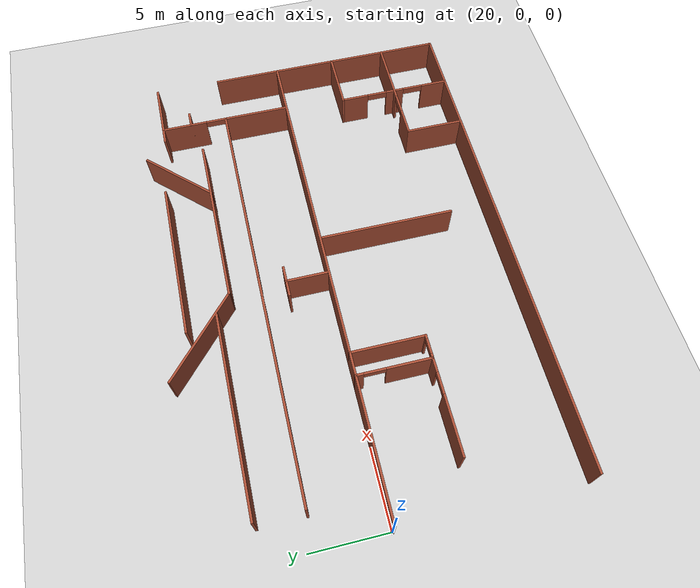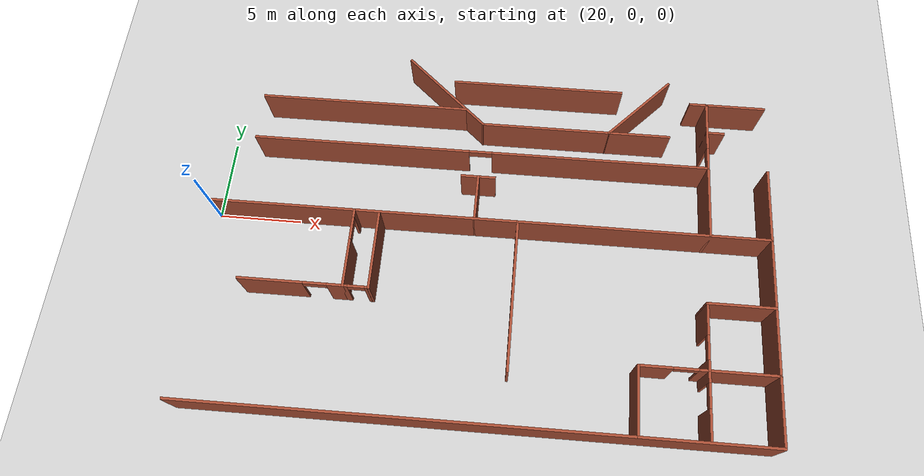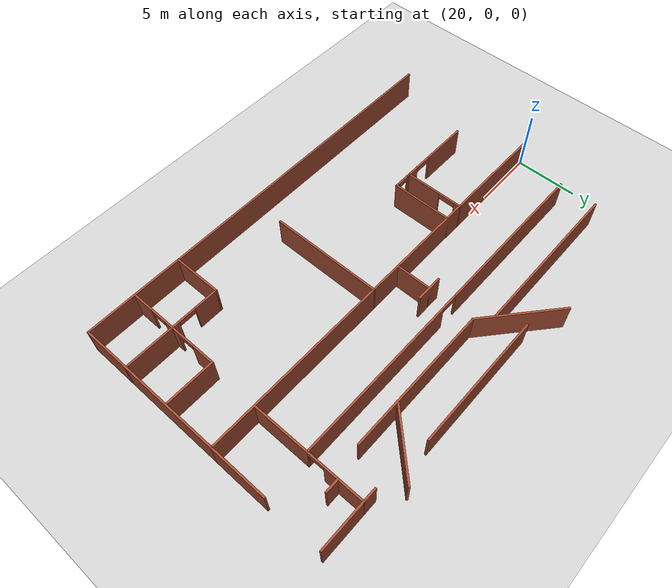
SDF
<sdf version="1.7">
 <world name="default">
  <model name="ground_plane">
   <static>1</static>
   <link name="link">
    <collision name="collision">
     <geometry><plane><normal>0 0 1</normal><size>100 100</size></plane></geometry>
     <surface><friction><ode><mu>100</mu><mu2>50</mu2></ode></friction></surface>
    </collision>
    <visual name="visual">
     <cast_shadows>0</cast_shadows>
     <geometry><plane><normal>0 0 1</normal><size>100 100</size></plane></geometry>
     <material>
      <script><uri>file://media/materials/scripts/gazebo.material</uri><name>Gazebo/Grey</name></script>
     </material>
    </visual>
   </link>
  </model>
  <model name="indoor_total_5">
   <pose>26.8 9 0 0 -0 0</pose>
   <link name="Wall_101">
    <collision name="Wall_101_Collision">
     <geometry><box><size>2.95 0.15 2.5</size></box></geometry>
     <pose>0 0 1.25 0 -0 0</pose>
    </collision>
    <visual name="Wall_101_Visual">
     <pose>0 0 1.25 0 -0 0</pose>
     <geometry><box><size>2.95 0.15 2.5</size></box></geometry>
     <material>
      <script><uri>file://media/materials/scripts/gazebo.material</uri><name>Gazebo/Bricks</name></script>
      <ambient>1 1 1 1</ambient>
     </material>
     <meta><layer>0</layer></meta>
    </visual>
    <pose>9.2 -7.6 0 0 -0 1.5708</pose>
   </link>
   <link name="Wall_103">
    <collision name="Wall_103_Collision">
     <geometry><box><size>4.65 0.15 2.5</size></box></geometry>
     <pose>0 0 1.25 0 -0 0</pose>
    </collision>
    <visual name="Wall_103_Visual">
     <pose>0 0 1.25 0 -0 0</pose>
     <geometry><box><size>4.65 0.15 2.5</size></box></geometry>
     <material>
      <script><uri>file://media/materials/scripts/gazebo.material</uri><name>Gazebo/Bricks</name></script>
      <ambient>1 1 1 1</ambient>
     </material>
     <meta><layer>0</layer></meta>
    </visual>
    <pose>23.2 -6.75 0 0 -0 -1.5708</pose>
   </link>
   <link name="Wall_108">
    <collision name="Wall_108_Collision">
     <geometry><box><size>11.75 0.15 2.5</size></box></geometry>
     <pose>0 0 1.25 0 -0 0</pose>
    </collision>
    <visual name="Wall_108_Visual">
     <pose>0 0 1.25 0 -0 0</pose>
     <geometry><box><size>11.75 0.15 2.5</size></box></geometry>
     <material>
      <script><uri>file://media/materials/scripts/gazebo.material</uri><name>Gazebo/Bricks</name></script>
      <ambient>1 1 1 1</ambient>
     </material>
     <meta><layer>0</layer></meta>
    </visual>
    <pose>15 -2.5 0 0 -0 3.14159</pose>
   </link>
   <link name="Wall_110">
    <collision name="Wall_110_Collision">
     <geometry><box><size>6.81033 0.15 2.5</size></box></geometry>
     <pose>0 0 1.25 0 -0 0</pose>
    </collision>
    <visual name="Wall_110_Visual">
     <pose>0 0 1.25 0 -0 0</pose>
     <geometry><box><size>6.81033 0.15 2.5</size></box></geometry>
     <material>
      <script><uri>file://media/materials/scripts/gazebo.material</uri><name>Gazebo/Bricks</name></script>
      <ambient>1 1 1 1</ambient>
     </material>
     <meta><layer>0</layer></meta>
    </visual>
    <pose>6.7 -0.3 0 0 -0 -0.721655</pose>
   </link>
   <link name="Wall_114">
    <collision name="Wall_114_Collision">
     <geometry><box><size>12.95 0.15 2.5</size></box></geometry>
     <pose>0 0 1.25 0 -0 0</pose>
    </collision>
    <visual name="Wall_114_Visual">
     <pose>0 0 1.25 0 -0 0</pose>
     <geometry><box><size>12.95 0.15 2.5</size></box></geometry>
     <material>
      <script><uri>file://media/materials/scripts/gazebo.material</uri><name>Gazebo/Bricks</name></script>
      <ambient>1 1 1 1</ambient>
     </material>
     <meta><layer>0</layer></meta>
    </visual>
    <pose>1.6 -1.5 0 0 -0 0</pose>
   </link>
   <link name="Wall_130">
    <collision name="Wall_130_Collision">
     <geometry><box><size>5.53693 0.15 2.5</size></box></geometry>
     <pose>0 0 1.25 0 -0 0</pose>
    </collision>
    <visual name="Wall_130_Visual">
     <pose>0 0 1.25 0 -0 0</pose>
     <geometry><box><size>5.53693 0.15 2.5</size></box></geometry>
     <material>
      <script><uri>file://media/materials/scripts/gazebo.material</uri><name>Gazebo/Bricks</name></script>
      <ambient>1 1 1 1</ambient>
     </material>
     <meta><layer>0</layer></meta>
    </visual>
    <pose>18.9425 -0.5495 0 0 -0 0.809816</pose>
   </link>
   <link name="Wall_144">
    <collision name="Wall_144_Collision">
     <geometry><box><size>10.75 0.15 2.5</size></box></geometry>
     <pose>0 0 1.25 0 -0 0</pose>
    </collision>
    <visual name="Wall_144_Visual">
     <pose>0 0 1.25 0 -0 0</pose>
     <geometry><box><size>10.75 0.15 2.5</size></box></geometry>
     <material>
      <script><uri>file://media/materials/scripts/gazebo.material</uri><name>Gazebo/Bricks</name></script>
      <ambient>1 1 1 1</ambient>
     </material>
     <meta><layer>0</layer></meta>
    </visual>
    <pose>12.5 0.5 0 0 -0 3.14159</pose>
   </link>
   <link name="Wall_151">
    <collision name="Wall_151_Collision">
     <geometry><box><size>1.15 0.15 2.5</size></box></geometry>
     <pose>0 0 1.25 0 -0 0</pose>
    </collision>
    <visual name="Wall_151_Visual">
     <pose>0 0 1.25 0 -0 0</pose>
     <geometry><box><size>1.15 0.15 2.5</size></box></geometry>
     <material>
      <script><uri>file://media/materials/scripts/gazebo.material</uri><name>Gazebo/Bricks</name></script>
      <ambient>1 1 1 1</ambient>
     </material>
     <meta><layer>0</layer></meta>
    </visual>
    <pose>23.7 -2 0 0 -0 0</pose>
   </link>
   <link name="Wall_158">
    <pose>2 -11.4 0 0 -0 -1.5708</pose>
    <visual name="Wall_158_Visual_0">
     <pose>-2.19297 0 1.25 0 -0 0</pose>
     <geometry><box><size>0.564066 0.15 2.5</size></box></geometry>
     <material>
      <script><uri>file://media/materials/scripts/gazebo.material</uri><name>Gazebo/Bricks</name></script>
      <ambient>1 1 1 1</ambient>
     </material>
     <meta><layer>0</layer></meta>
    </visual>
    <collision name="Wall_158_Collision_0">
     <geometry><box><size>0.564066 0.15 2.5</size></box></geometry>
     <pose>-2.19297 0 1.25 0 -0 0</pose>
    </collision>
    <visual name="Wall_158_Visual_1">
     <pose>0.982033 0 1.25 0 -0 0</pose>
     <geometry><box><size>2.98593 0.15 2.5</size></box></geometry>
     <material>
      <script><uri>file://media/materials/scripts/gazebo.material</uri><name>Gazebo/Bricks</name></script>
      <ambient>1 1 1 1</ambient>
     </material>
     <meta><layer>0</layer></meta>
    </visual>
    <collision name="Wall_158_Collision_1">
     <geometry><box><size>2.98593 0.15 2.5</size></box></geometry>
     <pose>0.982033 0 1.25 0 -0 0</pose>
    </collision>
    <visual name="Wall_158_Visual_2">
     <pose>-1.21093 0 2.25 0 -0 0</pose>
     <geometry><box><size>1.4 0.15 0.5</size></box></geometry>
     <material>
      <script><uri>file://media/materials/scripts/gazebo.material</uri><name>Gazebo/Bricks</name></script>
      <ambient>1 1 1 1</ambient>
     </material>
     <meta><layer>0</layer></meta>
    </visual>
    <collision name="Wall_158_Collision_2">
     <geometry><box><size>1.4 0.15 0.5</size></box></geometry>
     <pose>-1.21093 0 2.25 0 -0 0</pose>
    </collision>
   </link>
   <link name="Wall_159">
    <pose>2.75 -13.8 0 0 -0 0</pose>
    <visual name="Wall_159_Visual_0">
     <pose>-0.651036 0 1.25 0 -0 0</pose>
     <geometry><box><size>0.347928 0.15 2.5</size></box></geometry>
     <material>
      <script><uri>file://media/materials/scripts/gazebo.material</uri><name>Gazebo/Bricks</name></script>
      <ambient>1 1 1 1</ambient>
     </material>
     <meta><layer>0</layer></meta>
    </visual>
    <collision name="Wall_159_Collision_0">
     <geometry><box><size>0.347928 0.15 2.5</size></box></geometry>
     <pose>-0.651036 0 1.25 0 -0 0</pose>
    </collision>
    <visual name="Wall_159_Visual_1">
     <pose>0.673964 0 1.25 0 -0 0</pose>
     <geometry><box><size>0.302072 0.15 2.5</size></box></geometry>
     <material>
      <script><uri>file://media/materials/scripts/gazebo.material</uri><name>Gazebo/Bricks</name></script>
      <ambient>1 1 1 1</ambient>
     </material>
     <meta><layer>0</layer></meta>
    </visual>
    <collision name="Wall_159_Collision_1">
     <geometry><box><size>0.302072 0.15 2.5</size></box></geometry>
     <pose>0.673964 0 1.25 0 -0 0</pose>
    </collision>
    <visual name="Wall_159_Visual_2">
     <pose>0.022928 0 2.25 0 -0 0</pose>
     <geometry><box><size>1 0.15 0.5</size></box></geometry>
     <material>
      <script><uri>file://media/materials/scripts/gazebo.material</uri><name>Gazebo/Bricks</name></script>
      <ambient>1 1 1 1</ambient>
     </material>
     <meta><layer>0</layer></meta>
    </visual>
    <collision name="Wall_159_Collision_2">
     <geometry><box><size>1 0.15 0.5</size></box></geometry>
     <pose>0.022928 0 2.25 0 -0 0</pose>
    </collision>
   </link>
   <link name="Wall_160">
    <collision name="Wall_160_Collision">
     <geometry><box><size>4.95 0.15 2.5</size></box></geometry>
     <pose>0 0 1.25 0 -0 0</pose>
    </collision>
    <visual name="Wall_160_Visual">
     <pose>0 0 1.25 0 -0 0</pose>
     <geometry><box><size>4.95 0.15 2.5</size></box></geometry>
     <material>
      <script><uri>file://media/materials/scripts/gazebo.material</uri><name>Gazebo/Bricks</name></script>
      <ambient>1 1 1 1</ambient>
     </material>
     <meta><layer>0</layer></meta>
    </visual>
    <pose>3.5 -11.4 0 0 -0 1.5708</pose>
   </link>
   <link name="Wall_162">
    <collision name="Wall_162_Collision">
     <geometry><box><size>4.05 0.15 2.5</size></box></geometry>
     <pose>0 0 1.25 0 -0 0</pose>
    </collision>
    <visual name="Wall_162_Visual">
     <pose>0 0 1.25 0 -0 0</pose>
     <geometry><box><size>4.05 0.15 2.5</size></box></geometry>
     <material>
      <script><uri>file://media/materials/scripts/gazebo.material</uri><name>Gazebo/Bricks</name></script>
      <ambient>1 1 1 1</ambient>
     </material>
     <meta><layer>0</layer></meta>
    </visual>
    <pose>19 -19.05 0 0 -0 1.5708</pose>
   </link>
   <link name="Wall_163">
    <pose>22.9 -17.1 0 0 -0 0</pose>
    <visual name="Wall_163_Visual_0">
     <pose>-2.97254 0 1.25 0 -0 0</pose>
     <geometry><box><size>2.00492 0.15 2.5</size></box></geometry>
     <material>
      <script><uri>file://media/materials/scripts/gazebo.material</uri><name>Gazebo/Bricks</name></script>
      <ambient>1 1 1 1</ambient>
     </material>
     <meta><layer>0</layer></meta>
    </visual>
    <collision name="Wall_163_Collision_0">
     <geometry><box><size>2.00492 0.15 2.5</size></box></geometry>
     <pose>-2.97254 0 1.25 0 -0 0</pose>
    </collision>
    <visual name="Wall_163_Visual_1">
     <pose>1.70246 0 1.25 0 -0 0</pose>
     <geometry><box><size>4.54508 0.15 2.5</size></box></geometry>
     <material>
      <script><uri>file://media/materials/scripts/gazebo.material</uri><name>Gazebo/Bricks</name></script>
      <ambient>1 1 1 1</ambient>
     </material>
     <meta><layer>0</layer></meta>
    </visual>
    <collision name="Wall_163_Collision_1">
     <geometry><box><size>4.54508 0.15 2.5</size></box></geometry>
     <pose>1.70246 0 1.25 0 -0 0</pose>
    </collision>
    <visual name="Wall_163_Visual_2">
     <pose>-1.27008 0 2.25 0 -0 0</pose>
     <geometry><box><size>1.4 0.15 0.5</size></box></geometry>
     <material>
      <script><uri>file://media/materials/scripts/gazebo.material</uri><name>Gazebo/Bricks</name></script>
      <ambient>1 1 1 1</ambient>
     </material>
     <meta><layer>0</layer></meta>
    </visual>
    <collision name="Wall_163_Collision_2">
     <geometry><box><size>1.4 0.15 0.5</size></box></geometry>
     <pose>-1.27008 0 2.25 0 -0 0</pose>
    </collision>
   </link>
   <link name="Wall_165">
    <collision name="Wall_165_Collision">
     <geometry><box><size>4.05 0.15 2.5</size></box></geometry>
     <pose>0 0 1.25 0 -0 0</pose>
    </collision>
    <visual name="Wall_165_Visual">
     <pose>0 0 1.25 0 -0 0</pose>
     <geometry><box><size>4.05 0.15 2.5</size></box></geometry>
     <material>
      <script><uri>file://media/materials/scripts/gazebo.material</uri><name>Gazebo/Bricks</name></script>
      <ambient>1 1 1 1</ambient>
     </material>
     <meta><layer>0</layer></meta>
    </visual>
    <pose>24.85 -13.2 0 0 -0 3.14159</pose>
   </link>
   <link name="Wall_166">
    <pose>22.9 -17.1 0 0 -0 -1.5708</pose>
    <visual name="Wall_166_Visual_0">
     <pose>-3.00683 0 1.25 0 -0 0</pose>
     <geometry><box><size>1.93633 0.15 2.5</size></box></geometry>
     <material>
      <script><uri>file://media/materials/scripts/gazebo.material</uri><name>Gazebo/Bricks</name></script>
      <ambient>1 1 1 1</ambient>
     </material>
     <meta><layer>0</layer></meta>
    </visual>
    <collision name="Wall_166_Collision_0">
     <geometry><box><size>1.93633 0.15 2.5</size></box></geometry>
     <pose>-3.00683 0 1.25 0 -0 0</pose>
    </collision>
    <visual name="Wall_166_Visual_1">
     <pose>0.014946 0 1.25 0 -0 0</pose>
     <geometry><box><size>1.30723 0.15 2.5</size></box></geometry>
     <material>
      <script><uri>file://media/materials/scripts/gazebo.material</uri><name>Gazebo/Bricks</name></script>
      <ambient>1 1 1 1</ambient>
     </material>
     <meta><layer>0</layer></meta>
    </visual>
    <collision name="Wall_166_Collision_1">
     <geometry><box><size>1.30723 0.15 2.5</size></box></geometry>
     <pose>0.014946 0 1.25 0 -0 0</pose>
    </collision>
    <visual name="Wall_166_Visual_2">
     <pose>3.02178 0 1.25 0 -0 0</pose>
     <geometry><box><size>1.90644 0.15 2.5</size></box></geometry>
     <material>
      <script><uri>file://media/materials/scripts/gazebo.material</uri><name>Gazebo/Bricks</name></script>
      <ambient>1 1 1 1</ambient>
     </material>
     <meta><layer>0</layer></meta>
    </visual>
    <collision name="Wall_166_Collision_2">
     <geometry><box><size>1.90644 0.15 2.5</size></box></geometry>
     <pose>3.02178 0 1.25 0 -0 0</pose>
    </collision>
    <visual name="Wall_166_Visual_3">
     <pose>-1.33867 0 2.25 0 -0 0</pose>
     <geometry><box><size>1.4 0.15 0.5</size></box></geometry>
     <material>
      <script><uri>file://media/materials/scripts/gazebo.material</uri><name>Gazebo/Bricks</name></script>
      <ambient>1 1 1 1</ambient>
     </material>
     <meta><layer>0</layer></meta>
    </visual>
    <collision name="Wall_166_Collision_3">
     <geometry><box><size>1.4 0.15 0.5</size></box></geometry>
     <pose>-1.33867 0 2.25 0 -0 0</pose>
    </collision>
    <visual name="Wall_166_Visual_4">
     <pose>1.36856 0 2.25 0 -0 0</pose>
     <geometry><box><size>1.4 0.15 0.5</size></box></geometry>
     <material>
      <script><uri>file://media/materials/scripts/gazebo.material</uri><name>Gazebo/Bricks</name></script>
      <ambient>1 1 1 1</ambient>
     </material>
     <meta><layer>0</layer></meta>
    </visual>
    <collision name="Wall_166_Collision_4">
     <geometry><box><size>1.4 0.15 0.5</size></box></geometry>
     <pose>1.36856 0 2.25 0 -0 0</pose>
    </collision>
   </link>
   <link name="Wall_168">
    <collision name="Wall_168_Collision">
     <geometry><box><size>2.15 0.15 2.5</size></box></geometry>
     <pose>0 0 1.25 0 -0 0</pose>
    </collision>
    <visual name="Wall_168_Visual">
     <pose>0 0 1.25 0 -0 0</pose>
     <geometry><box><size>2.15 0.15 2.5</size></box></geometry>
     <material>
      <script><uri>file://media/materials/scripts/gazebo.material</uri><name>Gazebo/Bricks</name></script>
      <ambient>1 1 1 1</ambient>
     </material>
     <meta><layer>0</layer></meta>
    </visual>
    <pose>9.2 -6.2 0 0 -0 0</pose>
   </link>
   <link name="Wall_176">
    <collision name="Wall_176_Collision">
     <geometry><box><size>4.65 0.15 2.5</size></box></geometry>
     <pose>0 0 1.25 0 -0 0</pose>
    </collision>
    <visual name="Wall_176_Visual">
     <pose>0 0 1.25 0 -0 0</pose>
     <geometry><box><size>4.65 0.15 2.5</size></box></geometry>
     <material>
      <script><uri>file://media/materials/scripts/gazebo.material</uri><name>Gazebo/Bricks</name></script>
      <ambient>1 1 1 1</ambient>
     </material>
     <meta><layer>0</layer></meta>
    </visual>
    <pose>26.8 -6.75 0 0 -0 -1.5708</pose>
   </link>
   <link name="Wall_180">
    <pose>-1.0605 -13.8 0 0 -0 0</pose>
    <visual name="Wall_180_Visual_0">
     <pose>-1.20375 0 1.25 0 -0 0</pose>
     <geometry><box><size>3.86349 0.15 2.5</size></box></geometry>
     <material>
      <script><uri>file://media/materials/scripts/gazebo.material</uri><name>Gazebo/Bricks</name></script>
      <ambient>1 1 1 1</ambient>
     </material>
     <meta><layer>0</layer></meta>
    </visual>
    <collision name="Wall_180_Collision_0">
     <geometry><box><size>3.86349 0.15 2.5</size></box></geometry>
     <pose>-1.20375 0 1.25 0 -0 0</pose>
    </collision>
    <visual name="Wall_180_Visual_1">
     <pose>2.63175 0 1.25 0 -0 0</pose>
     <geometry><box><size>1.00751 0.15 2.5</size></box></geometry>
     <material>
      <script><uri>file://media/materials/scripts/gazebo.material</uri><name>Gazebo/Bricks</name></script>
      <ambient>1 1 1 1</ambient>
     </material>
     <meta><layer>0</layer></meta>
    </visual>
    <collision name="Wall_180_Collision_1">
     <geometry><box><size>1.00751 0.15 2.5</size></box></geometry>
     <pose>2.63175 0 1.25 0 -0 0</pose>
    </collision>
    <visual name="Wall_180_Visual_2">
     <pose>1.42799 0 2.25 0 -0 0</pose>
     <geometry><box><size>1.4 0.15 0.5</size></box></geometry>
     <material>
      <script><uri>file://media/materials/scripts/gazebo.material</uri><name>Gazebo/Bricks</name></script>
      <ambient>1 1 1 1</ambient>
     </material>
     <meta><layer>0</layer></meta>
    </visual>
    <collision name="Wall_180_Collision_2">
     <geometry><box><size>1.4 0.15 0.5</size></box></geometry>
     <pose>1.42799 0 2.25 0 -0 0</pose>
    </collision>
   </link>
   <link name="Wall_65">
    <collision name="Wall_65_Collision">
     <geometry><box><size>12.15 0.15 2.5</size></box></geometry>
     <pose>0 0 1.25 0 -0 0</pose>
    </collision>
    <visual name="Wall_65_Visual">
     <pose>0 0 1.25 0 -0 0</pose>
     <geometry><box><size>12.15 0.15 2.5</size></box></geometry>
     <material>
      <script><uri>file://media/materials/scripts/gazebo.material</uri><name>Gazebo/Bricks</name></script>
      <ambient>1 1 1 1</ambient>
     </material>
     <meta><layer>0</layer></meta>
    </visual>
    <pose>26.8 -15 0 0 -0 -1.5708</pose>
   </link>
   <link name="Wall_66">
    <collision name="Wall_66_Collision">
     <geometry><box><size>33.75 0.15 2.5</size></box></geometry>
     <pose>0 0 1.25 0 -0 0</pose>
    </collision>
    <visual name="Wall_66_Visual">
     <pose>0 0 1.25 0 -0 0</pose>
     <geometry><box><size>33.75 0.15 2.5</size></box></geometry>
     <material>
      <script><uri>file://media/materials/scripts/gazebo.material</uri><name>Gazebo/Bricks</name></script>
      <ambient>1 1 1 1</ambient>
     </material>
     <meta><layer>0</layer></meta>
    </visual>
    <pose>10 -21 0 0 -0 3.14159</pose>
   </link>
   <link name="Wall_68">
    <collision name="Wall_68_Collision">
     <geometry><box><size>33.75 0.15 2.5</size></box></geometry>
     <pose>0 0 1.25 0 -0 0</pose>
    </collision>
    <visual name="Wall_68_Visual">
     <pose>0 0 1.25 0 -0 0</pose>
     <geometry><box><size>33.75 0.15 2.5</size></box></geometry>
     <material>
      <script><uri>file://media/materials/scripts/gazebo.material</uri><name>Gazebo/Bricks</name></script>
      <ambient>1 1 1 1</ambient>
     </material>
     <meta><layer>0</layer></meta>
    </visual>
    <pose>10 -9 0 0 -0 0</pose>
   </link>
   <link name="Wall_76">
    <pose>9.2 -4.5 0 0 -0 0</pose>
    <visual name="Wall_76_Visual_0">
     <pose>-7.3875 0 1.25 0 -0 0</pose>
     <geometry><box><size>13.375 0.15 2.5</size></box></geometry>
     <material>
      <script><uri>file://media/materials/scripts/gazebo.material</uri><name>Gazebo/Bricks</name></script>
      <ambient>1 1 1 1</ambient>
     </material>
     <meta><layer>0</layer></meta>
    </visual>
    <collision name="Wall_76_Collision_0">
     <geometry><box><size>13.375 0.15 2.5</size></box></geometry>
     <pose>-7.3875 0 1.25 0 -0 0</pose>
    </collision>
    <visual name="Wall_76_Visual_1">
     <pose>7.3875 0 1.25 0 -0 0</pose>
     <geometry><box><size>13.375 0.15 2.5</size></box></geometry>
     <material>
      <script><uri>file://media/materials/scripts/gazebo.material</uri><name>Gazebo/Bricks</name></script>
      <ambient>1 1 1 1</ambient>
     </material>
     <meta><layer>0</layer></meta>
    </visual>
    <collision name="Wall_76_Collision_1">
     <geometry><box><size>13.375 0.15 2.5</size></box></geometry>
     <pose>7.3875 0 1.25 0 -0 0</pose>
    </collision>
    <visual name="Wall_76_Visual_2">
     <pose>0 0 2.25 0 -0 0</pose>
     <geometry><box><size>1.4 0.15 0.5</size></box></geometry>
     <material>
      <script><uri>file://media/materials/scripts/gazebo.material</uri><name>Gazebo/Bricks</name></script>
      <ambient>1 1 1 1</ambient>
     </material>
     <meta><layer>0</layer></meta>
    </visual>
    <collision name="Wall_76_Collision_2">
     <geometry><box><size>1.4 0.15 0.5</size></box></geometry>
     <pose>0 0 2.25 0 -0 0</pose>
    </collision>
   </link>
   <link name="Wall_92">
    <collision name="Wall_92_Collision">
     <geometry><box><size>9.15 0.15 2.5</size></box></geometry>
     <pose>0 0 1.25 0 -0 0</pose>
    </collision>
    <visual name="Wall_92_Visual">
     <pose>0 0 1.25 0 -0 0</pose>
     <geometry><box><size>9.15 0.15 2.5</size></box></geometry>
     <material>
      <script><uri>file://media/materials/scripts/gazebo.material</uri><name>Gazebo/Bricks</name></script>
      <ambient>1 1 1 1</ambient>
     </material>
     <meta><layer>0</layer></meta>
    </visual>
    <pose>11.8 -13.5 0 0 -0 -1.5708</pose>
   </link>
   <link name="Wall_94">
    <pose>23.2 -2.25 0 0 -0 1.5708</pose>
    <visual name="Wall_94_Visual_0">
     <pose>-2.2875 0 1.25 0 -0 0</pose>
     <geometry><box><size>0.075 0.15 2.5</size></box></geometry>
     <material>
      <script><uri>file://media/materials/scripts/gazebo.material</uri><name>Gazebo/Bricks</name></script>
      <ambient>1 1 1 1</ambient>
     </material>
     <meta><layer>0</layer></meta>
    </visual>
    <collision name="Wall_94_Collision_0">
     <geometry><box><size>0.075 0.15 2.5</size></box></geometry>
     <pose>-2.2875 0 1.25 0 -0 0</pose>
    </collision>
    <visual name="Wall_94_Visual_1">
     <pose>0.7375 0 1.25 0 -0 0</pose>
     <geometry><box><size>3.175 0.15 2.5</size></box></geometry>
     <material>
      <script><uri>file://media/materials/scripts/gazebo.material</uri><name>Gazebo/Bricks</name></script>
      <ambient>1 1 1 1</ambient>
     </material>
     <meta><layer>0</layer></meta>
    </visual>
    <collision name="Wall_94_Collision_1">
     <geometry><box><size>3.175 0.15 2.5</size></box></geometry>
     <pose>0.7375 0 1.25 0 -0 0</pose>
    </collision>
    <visual name="Wall_94_Visual_2">
     <pose>-1.55 0 2.25 0 -0 0</pose>
     <geometry><box><size>1.4 0.15 0.5</size></box></geometry>
     <material>
      <script><uri>file://media/materials/scripts/gazebo.material</uri><name>Gazebo/Bricks</name></script>
      <ambient>1 1 1 1</ambient>
     </material>
     <meta><layer>0</layer></meta>
    </visual>
    <collision name="Wall_94_Collision_2">
     <geometry><box><size>1.4 0.15 0.5</size></box></geometry>
     <pose>-1.55 0 2.25 0 -0 0</pose>
    </collision>
   </link>
   <link name="Wall_95">
    <collision name="Wall_95_Collision">
     <geometry><box><size>3.75 0.15 2.5</size></box></geometry>
     <pose>0 0 1.25 0 -0 0</pose>
    </collision>
    <visual name="Wall_95_Visual">
     <pose>0 0 1.25 0 -0 0</pose>
     <geometry><box><size>3.75 0.15 2.5</size></box></geometry>
     <material>
      <script><uri>file://media/materials/scripts/gazebo.material</uri><name>Gazebo/Bricks</name></script>
      <ambient>1 1 1 1</ambient>
     </material>
     <meta><layer>0</layer></meta>
    </visual>
    <pose>25 0 0 0 -0 0</pose>
   </link>
   <link name="Wall_99">
    <collision name="Wall_99_Collision">
     <geometry><box><size>1.15 0.15 2.5</size></box></geometry>
     <pose>0 0 1.25 0 -0 0</pose>
    </collision>
    <visual name="Wall_99_Visual">
     <pose>0 0 1.25 0 -0 0</pose>
     <geometry><box><size>1.15 0.15 2.5</size></box></geometry>
     <material>
      <script><uri>file://media/materials/scripts/gazebo.material</uri><name>Gazebo/Bricks</name></script>
      <ambient>1 1 1 1</ambient>
     </material>
     <meta><layer>0</layer></meta>
    </visual>
    <pose>22.7 0 0 0 -0 0</pose>
   </link>
   <static>1</static>
  </model>
 </world>
</sdf>
